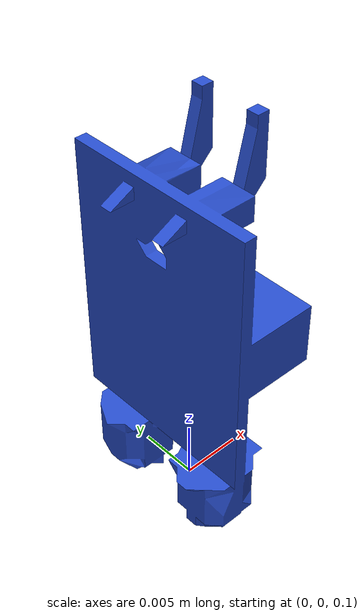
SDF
<?xml version="1.0"?>

<sdf version="1.5">
    <model name="line_sensor">
        <pose>0 0 0.1  0 0 0</pose>
        <static>true</static>

        <link name="line_sensor_link">
            <visual name='sensor1_link_visual'>
                <pose>0 0 0 0 0 0</pose>
                <geometry>
                    <mesh>
                        <scale>1 1 1</scale>
                        <uri>model://line_sensor/meshes/sensor.stl</uri>
                    </mesh>
                </geometry>
                <material>
                <script>
                    <name>Gazebo/Blue</name>
                    <uri>file://media/materials/scripts/gazebo.material</uri>
                </script>
                </material>
            </visual>

            <sensor type="camera" name="line_sensor">
                <pose> 0 0 0 0 1.5707 0</pose>
                <visualize>true</visualize>

                <camera name="__default__">
                    <noise>
                        <type>gaussian</type>
                        <mean>0.0</mean>
                        <stddev>0.007</stddev>
                    </noise>
                </camera>

                <plugin name="line_sensor" filename="libline_sensor_plugin.so">
                    <brightness_topic>sensor_one</brightness_topic>
                    <adc_resolution>10</adc_resolution>
                </plugin>
            </sensor>
        </link>
    </model>
</sdf>
